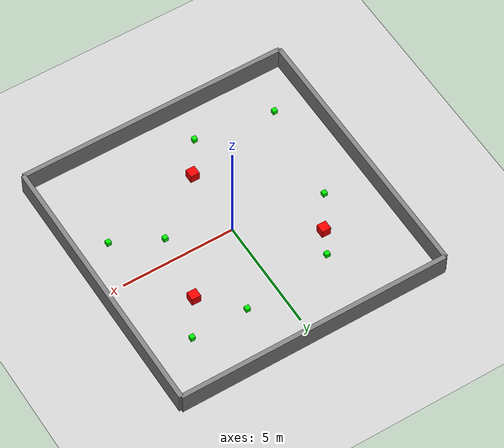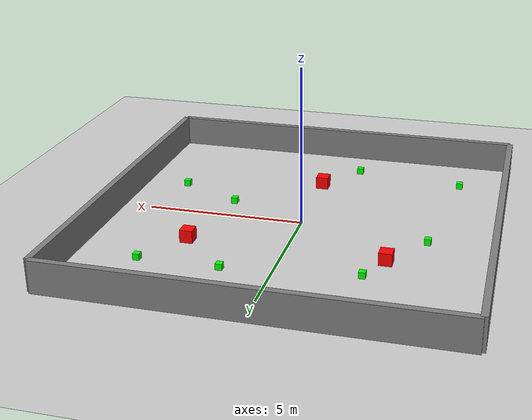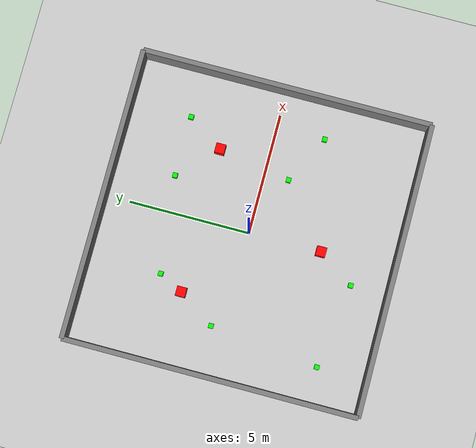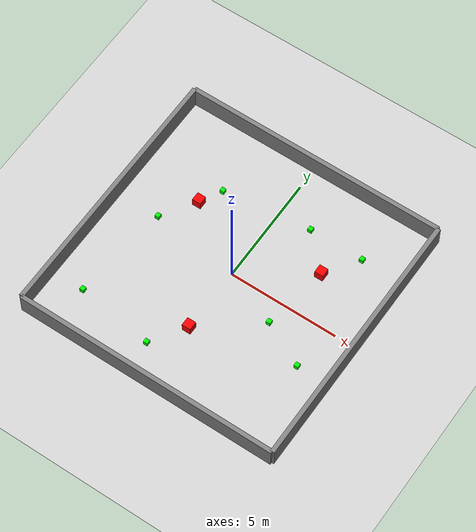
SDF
<?xml version="1.0" ?>
<sdf version="1.9">
  <world name="perception_world">

    <physics type="ode">
      <max_step_size>0.001</max_step_size>
      <real_time_factor>1.0</real_time_factor>
      <real_time_update_rate>1000</real_time_update_rate>
    </physics>

    <plugin filename="gz-sim-physics-system" name="gz::sim::systems::Physics"/>
    <plugin filename="gz-sim-user-commands-system" name="gz::sim::systems::UserCommands"/>
    <plugin filename="gz-sim-scene-broadcaster-system" name="gz::sim::systems::SceneBroadcaster"/>
    <plugin filename="gz-sim-sensors-system" name="gz::sim::systems::Sensors">
      <render_engine>ogre2</render_engine>
    </plugin>
    <plugin filename="gz-sim-contact-system" name="gz::sim::systems::Contact"/>

    <light name="sun" type="directional">
      <cast_shadows>true</cast_shadows>
      <pose>0 0 10 0 0 0</pose>
      <diffuse>0.8 0.8 0.8 1</diffuse>
      <specular>0.2 0.2 0.2 1</specular>
      <direction>-0.5 0.1 -0.9</direction>
    </light>

    <model name="ground_plane">
      <static>true</static>
      <link name="link">
        <collision name="collision">
          <geometry>
            <plane><normal>0 0 1</normal><size>100 100</size></plane>
          </geometry>
          <surface>
            <friction><ode><mu>1.0</mu><mu2>1.0</mu2></ode></friction>
          </surface>
        </collision>
        <visual name="visual">
          <geometry>
            <plane><normal>0 0 1</normal><size>100 100</size></plane>
          </geometry>
          <material>
            <ambient>0.8 0.8 0.8 1</ambient>
            <diffuse>0.8 0.8 0.8 1</diffuse>
          </material>
        </visual>
      </link>
    </model>

    <!-- Red Cube 1 -->
    <model name="red_cube_1">
      <static>true</static>
      <pose>3.0 2.0 0.2 0 0 0</pose>
      <link name="link">
        <collision name="collision">
          <geometry><box><size>0.4 0.4 0.4</size></box></geometry>
        </collision>
        <visual name="visual">
          <geometry><box><size>0.4 0.4 0.4</size></box></geometry>
          <material><ambient>1.0 0.0 0.0 1</ambient><diffuse>1.0 0.0 0.0 1</diffuse></material>
        </visual>
      </link>
    </model>

    <!-- Red Cube 2 -->
    <model name="red_cube_2">
      <static>true</static>
      <pose>-3.0 2.0 0.2 0 0 0</pose>
      <link name="link">
        <collision name="collision">
          <geometry><box><size>0.4 0.4 0.4</size></box></geometry>
        </collision>
        <visual name="visual">
          <geometry><box><size>0.4 0.4 0.4</size></box></geometry>
          <material><ambient>1.0 0.0 0.0 1</ambient><diffuse>1.0 0.0 0.0 1</diffuse></material>
        </visual>
      </link>
    </model>

    <!-- Red Cube 3 -->
    <model name="red_cube_3">
      <static>true</static>
      <pose>0.0 -3.0 0.2 0 0 0</pose>
      <link name="link">
        <collision name="collision">
          <geometry><box><size>0.4 0.4 0.4</size></box></geometry>
        </collision>
        <visual name="visual">
          <geometry><box><size>0.4 0.4 0.4</size></box></geometry>
          <material><ambient>1.0 0.0 0.0 1</ambient><diffuse>1.0 0.0 0.0 1</diffuse></material>
        </visual>
      </link>
    </model>

    <!-- Walls -->
    <model name="wall_north">
      <static>true</static>
      <pose>0 6 0.5 0 0 0</pose>
      <link name="link">
        <collision name="collision">
          <geometry><box><size>12 0.2 1</size></box></geometry>
        </collision>
        <visual name="visual">
          <geometry><box><size>12 0.2 1</size></box></geometry>
          <material><ambient>0.5 0.5 0.5 1</ambient></material>
        </visual>
      </link>
    </model>

    <model name="wall_south">
      <static>true</static>
      <pose>0 -6 0.5 0 0 0</pose>
      <link name="link">
        <collision name="collision">
          <geometry><box><size>12 0.2 1</size></box></geometry>
        </collision>
        <visual name="visual">
          <geometry><box><size>12 0.2 1</size></box></geometry>
          <material><ambient>0.5 0.5 0.5 1</ambient></material>
        </visual>
      </link>
    </model>

    <model name="wall_east">
      <static>true</static>
      <pose>6 0 0.5 0 0 0</pose>
      <link name="link">
        <collision name="collision">
          <geometry><box><size>0.2 12 1</size></box></geometry>
        </collision>
        <visual name="visual">
          <geometry><box><size>0.2 12 1</size></box></geometry>
          <material><ambient>0.5 0.5 0.5 1</ambient></material>
        </visual>
      </link>
    </model>

    <model name="wall_west">
      <static>true</static>
      <pose>-6 0 0.5 0 0 0</pose>
      <link name="link">
        <collision name="collision">
          <geometry><box><size>0.2 12 1</size></box></geometry>
        </collision>
        <visual name="visual">
          <geometry><box><size>0.2 12 1</size></box></geometry>
          <material><ambient>0.5 0.5 0.5 1</ambient></material>
        </visual>
      </link>
    </model>

    <!-- Green Waste (collectable) -->
    <model name="waste_0">
      <pose>1.5 3.5 0.1 0 0 0</pose>
      <link name="link">
        <collision name="collision">
          <geometry><box><size>0.2 0.2 0.2</size></box></geometry>
        </collision>
        <visual name="visual">
          <geometry><box><size>0.2 0.2 0.2</size></box></geometry>
          <material><ambient>0.0 1.0 0.0 1</ambient><diffuse>0.0 1.0 0.0 1</diffuse></material>
        </visual>
      </link>
    </model>
    <model name="waste_1">
      <pose>-4.0 0.5 0.1 0 0 0</pose>
      <link name="link">
        <collision name="collision">
          <geometry><box><size>0.2 0.2 0.2</size></box></geometry>
        </collision>
        <visual name="visual">
          <geometry><box><size>0.2 0.2 0.2</size></box></geometry>
          <material><ambient>0.0 1.0 0.0 1</ambient><diffuse>0.0 1.0 0.0 1</diffuse></material>
        </visual>
      </link>
    </model>
    <model name="waste_2">
      <pose>4.5 -2.0 0.1 0 0 0</pose>
      <link name="link">
        <collision name="collision">
          <geometry><box><size>0.2 0.2 0.2</size></box></geometry>
        </collision>
        <visual name="visual">
          <geometry><box><size>0.2 0.2 0.2</size></box></geometry>
          <material><ambient>0.0 1.0 0.0 1</ambient><diffuse>0.0 1.0 0.0 1</diffuse></material>
        </visual>
      </link>
    </model>
    <model name="waste_3">
      <pose>-1.0 -4.5 0.1 0 0 0</pose>
      <link name="link">
        <collision name="collision">
          <geometry><box><size>0.2 0.2 0.2</size></box></geometry>
        </collision>
        <visual name="visual">
          <geometry><box><size>0.2 0.2 0.2</size></box></geometry>
          <material><ambient>0.0 1.0 0.0 1</ambient><diffuse>0.0 1.0 0.0 1</diffuse></material>
        </visual>
      </link>
    </model>
    <model name="waste_4">
      <pose>2.5 -1.0 0.1 0 0 0</pose>
      <link name="link">
        <collision name="collision">
          <geometry><box><size>0.2 0.2 0.2</size></box></geometry>
        </collision>
        <visual name="visual">
          <geometry><box><size>0.2 0.2 0.2</size></box></geometry>
          <material><ambient>0.0 1.0 0.0 1</ambient><diffuse>0.0 1.0 0.0 1</diffuse></material>
        </visual>
      </link>
    </model>
    <model name="waste_5">
      <pose>-2.5 3.0 0.1 0 0 0</pose>
      <link name="link">
        <collision name="collision">
          <geometry><box><size>0.2 0.2 0.2</size></box></geometry>
        </collision>
        <visual name="visual">
          <geometry><box><size>0.2 0.2 0.2</size></box></geometry>
          <material><ambient>0.0 1.0 0.0 1</ambient><diffuse>0.0 1.0 0.0 1</diffuse></material>
        </visual>
      </link>
    </model>
    <model name="waste_6">
      <pose>4.0 3.5 0.1 0 0 0</pose>
      <link name="link">
        <collision name="collision">
          <geometry><box><size>0.2 0.2 0.2</size></box></geometry>
        </collision>
        <visual name="visual">
          <geometry><box><size>0.2 0.2 0.2</size></box></geometry>
          <material><ambient>0.0 1.0 0.0 1</ambient><diffuse>0.0 1.0 0.0 1</diffuse></material>
        </visual>
      </link>
    </model>
    <model name="waste_7">
      <pose>-4.5 -4.0 0.1 0 0 0</pose>
      <link name="link">
        <collision name="collision">
          <geometry><box><size>0.2 0.2 0.2</size></box></geometry>
        </collision>
        <visual name="visual">
          <geometry><box><size>0.2 0.2 0.2</size></box></geometry>
          <material><ambient>0.0 1.0 0.0 1</ambient><diffuse>0.0 1.0 0.0 1</diffuse></material>
        </visual>
      </link>
    </model>

  </world>
</sdf>
